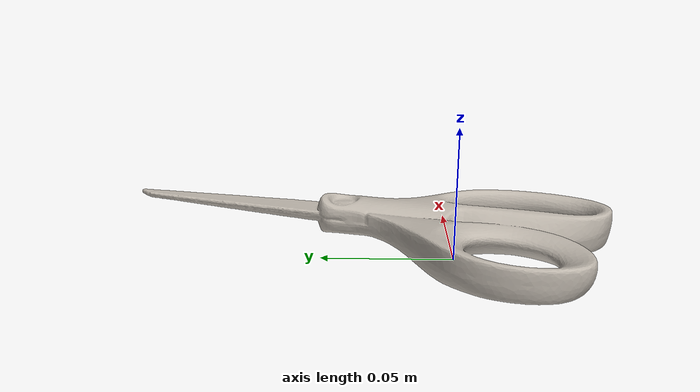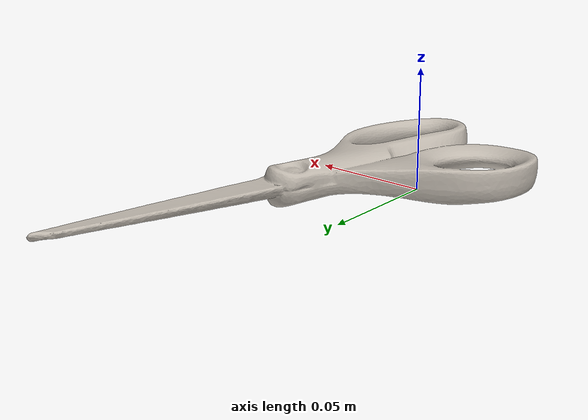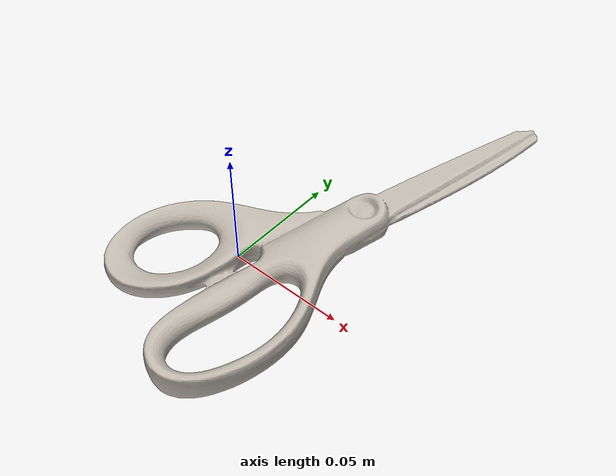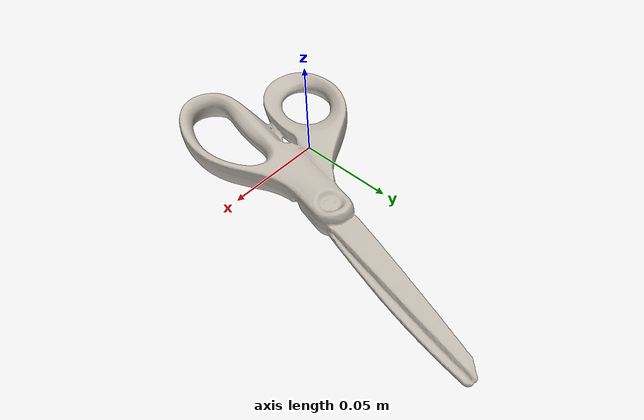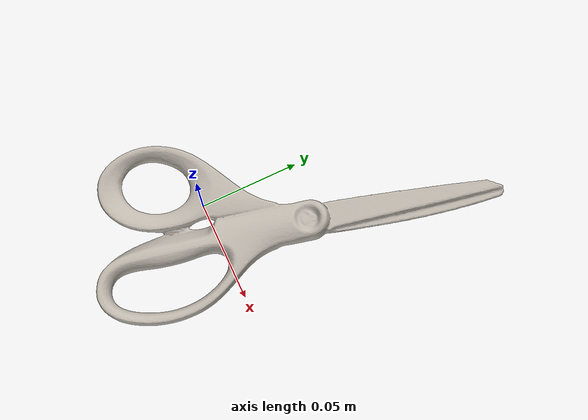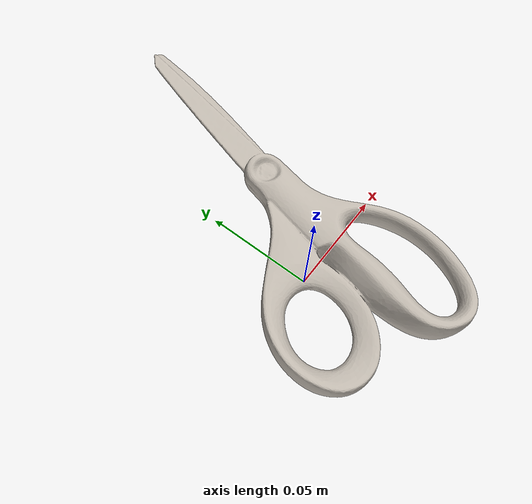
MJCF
<mujoco model="scissors">
  <compiler angle="radian" meshdir="assets" texturedir="assets"/>
    <default>
        <default class="ycb_col">
            <geom contype="1" conaffinity="1" group="3" rgba=".4 .5 .6 1"/>
        </default>
        <default class="ycb_viz">
            <geom contype="0" conaffinity="0" type="mesh" mass="0"/>
        </default>
    </default>
  <asset>
    <texture type="2d" name="scissors_tex" file="texture_map.png"/>
    <material name="scissors_mat" texture="scissors_tex" specular="0.5" shininess="0.5"/>
    <mesh file="textured.obj" name="scissors"/>
    <mesh file="textured_collision_0.obj" name="scissors_collision_0"/>
    <mesh file="textured_collision_1.obj" name="scissors_collision_1"/>
    <mesh file="textured_collision_2.obj" name="scissors_collision_2"/>
    <mesh file="textured_collision_3.obj" name="scissors_collision_3"/>
    <mesh file="textured_collision_4.obj" name="scissors_collision_4"/>
    <mesh file="textured_collision_5.obj" name="scissors_collision_5"/>
    <mesh file="textured_collision_6.obj" name="scissors_collision_6"/>
    <mesh file="textured_collision_7.obj" name="scissors_collision_7"/>
    <mesh file="textured_collision_8.obj" name="scissors_collision_8"/>
    <mesh file="textured_collision_9.obj" name="scissors_collision_9"/>
    <mesh file="textured_collision_10.obj" name="scissors_collision_10"/>
    <mesh file="textured_collision_11.obj" name="scissors_collision_11"/>
    <mesh file="textured_collision_12.obj" name="scissors_collision_12"/>
    <mesh file="textured_collision_13.obj" name="scissors_collision_13"/>
    <mesh file="textured_collision_14.obj" name="scissors_collision_14"/>
    <mesh file="textured_collision_15.obj" name="scissors_collision_15"/>
    <mesh file="textured_collision_16.obj" name="scissors_collision_16"/>
    <mesh file="textured_collision_17.obj" name="scissors_collision_17"/>
    <mesh file="textured_collision_18.obj" name="scissors_collision_18"/>
    <mesh file="textured_collision_19.obj" name="scissors_collision_19"/>
    <mesh file="textured_collision_20.obj" name="scissors_collision_20"/>
    <mesh file="textured_collision_21.obj" name="scissors_collision_21"/>
    <mesh file="textured_collision_22.obj" name="scissors_collision_22"/>
    <mesh file="textured_collision_23.obj" name="scissors_collision_23"/>
    <mesh file="textured_collision_24.obj" name="scissors_collision_24"/>
  </asset>
  <worldbody>
      <geom material="scissors_mat" mesh="scissors" class="ycb_viz"/>
      <geom mesh="scissors_collision_0" class="ycb_col" conaffinity="1" condim="4" friction="0.1 0.1 0.1" mass="0.007486870702542704" rgba="1 1 1 1" solimp="0.99 0.99 0.01" solref=".001 0.1" type="mesh" group="3"/>
      <geom mesh="scissors_collision_1" class="ycb_col" conaffinity="1" condim="4" friction="0.1 0.1 0.1" mass="0.004690881882944183" rgba="1 1 1 1" solimp="0.99 0.99 0.01" solref=".001 0.1" type="mesh" group="3"/>
      <geom mesh="scissors_collision_2" class="ycb_col" conaffinity="1" condim="4" friction="0.1 0.1 0.1" mass="0.005597028566266526" rgba="1 1 1 1" solimp="0.99 0.99 0.01" solref=".001 0.1" type="mesh" group="3"/>
      <geom mesh="scissors_collision_3" class="ycb_col" conaffinity="1" condim="4" friction="0.1 0.1 0.1" mass="0.004566343390961925" rgba="1 1 1 1" solimp="0.99 0.99 0.01" solref=".001 0.1" type="mesh" group="3"/>
      <geom mesh="scissors_collision_4" class="ycb_col" conaffinity="1" condim="4" friction="0.1 0.1 0.1" mass="0.0077312322118553555" rgba="1 1 1 1" solimp="0.99 0.99 0.01" solref=".001 0.1" type="mesh" group="3"/>
      <geom mesh="scissors_collision_5" class="ycb_col" conaffinity="1" condim="4" friction="0.1 0.1 0.1" mass="0.0032707898570665346" rgba="1 1 1 1" solimp="0.99 0.99 0.01" solref=".001 0.1" type="mesh" group="3"/>
      <geom mesh="scissors_collision_6" class="ycb_col" conaffinity="1" condim="4" friction="0.1 0.1 0.1" mass="0.0030685635019988564" rgba="1 1 1 1" solimp="0.99 0.99 0.01" solref=".001 0.1" type="mesh" group="3"/>
      <geom mesh="scissors_collision_7" class="ycb_col" conaffinity="1" condim="4" friction="0.1 0.1 0.1" mass="0.0011593925226942754" rgba="1 1 1 1" solimp="0.99 0.99 0.01" solref=".001 0.1" type="mesh" group="3"/>
      <geom mesh="scissors_collision_8" class="ycb_col" conaffinity="1" condim="4" friction="0.1 0.1 0.1" mass="0.002046782851610146" rgba="1 1 1 1" solimp="0.99 0.99 0.01" solref=".001 0.1" type="mesh" group="3"/>
      <geom mesh="scissors_collision_9" class="ycb_col" conaffinity="1" condim="4" friction="0.1 0.1 0.1" mass="0.002174380659539347" rgba="1 1 1 1" solimp="0.99 0.99 0.01" solref=".001 0.1" type="mesh" group="3"/>
      <geom mesh="scissors_collision_10" class="ycb_col" conaffinity="1" condim="4" friction="0.1 0.1 0.1" mass="0.001176788444591244" rgba="1 1 1 1" solimp="0.99 0.99 0.01" solref=".001 0.1" type="mesh" group="3"/>
      <geom mesh="scissors_collision_11" class="ycb_col" conaffinity="1" condim="4" friction="0.1 0.1 0.1" mass="0.0010787567821885903" rgba="1 1 1 1" solimp="0.99 0.99 0.01" solref=".001 0.1" type="mesh" group="3"/>
      <geom mesh="scissors_collision_12" class="ycb_col" conaffinity="1" condim="4" friction="0.1 0.1 0.1" mass="0.0010825265749015202" rgba="1 1 1 1" solimp="0.99 0.99 0.01" solref=".001 0.1" type="mesh" group="3"/>
      <geom mesh="scissors_collision_13" class="ycb_col" conaffinity="1" condim="4" friction="0.1 0.1 0.1" mass="0.0012264029625893142" rgba="1 1 1 1" solimp="0.99 0.99 0.01" solref=".001 0.1" type="mesh" group="3"/>
      <geom mesh="scissors_collision_14" class="ycb_col" conaffinity="1" condim="4" friction="0.1 0.1 0.1" mass="0.0010329274251345425" rgba="1 1 1 1" solimp="0.99 0.99 0.01" solref=".001 0.1" type="mesh" group="3"/>
      <geom mesh="scissors_collision_15" class="ycb_col" conaffinity="1" condim="4" friction="0.1 0.1 0.1" mass="0.002645206037189079" rgba="1 1 1 1" solimp="0.99 0.99 0.01" solref=".001 0.1" type="mesh" group="3"/>
      <geom mesh="scissors_collision_16" class="ycb_col" conaffinity="1" condim="4" friction="0.1 0.1 0.1" mass="0.0009677175064063189" rgba="1 1 1 1" solimp="0.99 0.99 0.01" solref=".001 0.1" type="mesh" group="3"/>
      <geom mesh="scissors_collision_17" class="ycb_col" conaffinity="1" condim="4" friction="0.1 0.1 0.1" mass="0.0013997581897735932" rgba="1 1 1 1" solimp="0.99 0.99 0.01" solref=".001 0.1" type="mesh" group="3"/>
      <geom mesh="scissors_collision_18" class="ycb_col" conaffinity="1" condim="4" friction="0.1 0.1 0.1" mass="0.00042672577824452593" rgba="1 1 1 1" solimp="0.99 0.99 0.01" solref=".001 0.1" type="mesh" group="3"/>
      <geom mesh="scissors_collision_19" class="ycb_col" conaffinity="1" condim="4" friction="0.1 0.1 0.1" mass="0.009691655642791763" rgba="1 1 1 1" solimp="0.99 0.99 0.01" solref=".001 0.1" type="mesh" group="3"/>
      <geom mesh="scissors_collision_20" class="ycb_col" conaffinity="1" condim="4" friction="0.1 0.1 0.1" mass="0.0026835101631331407" rgba="1 1 1 1" solimp="0.99 0.99 0.01" solref=".001 0.1" type="mesh" group="3"/>
      <geom mesh="scissors_collision_21" class="ycb_col" conaffinity="1" condim="4" friction="0.1 0.1 0.1" mass="0.0006432612041966515" rgba="1 1 1 1" solimp="0.99 0.99 0.01" solref=".001 0.1" type="mesh" group="3"/>
      <geom mesh="scissors_collision_22" class="ycb_col" conaffinity="1" condim="4" friction="0.1 0.1 0.1" mass="0.0008648940129387566" rgba="1 1 1 1" solimp="0.99 0.99 0.01" solref=".001 0.1" type="mesh" group="3"/>
      <geom mesh="scissors_collision_23" class="ycb_col" conaffinity="1" condim="4" friction="0.1 0.1 0.1" mass="0.01197174329934378" rgba="1 1 1 1" solimp="0.99 0.99 0.01" solref=".001 0.1" type="mesh" group="3"/>
      <geom mesh="scissors_collision_24" class="ycb_col" conaffinity="1" condim="4" friction="0.1 0.1 0.1" mass="0.0033158598290973207" rgba="1 1 1 1" solimp="0.99 0.99 0.01" solref=".001 0.1" type="mesh" group="3"/>
  </worldbody>
</mujoco>
